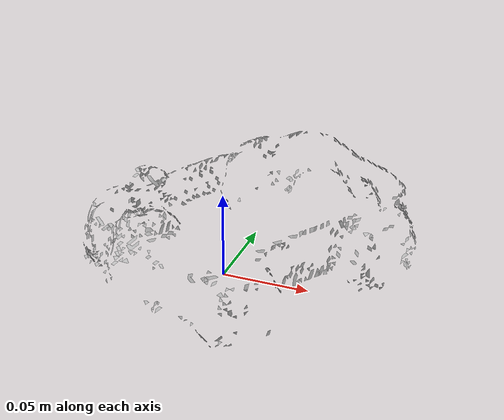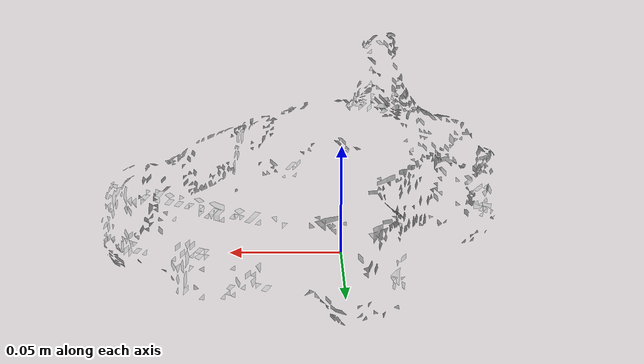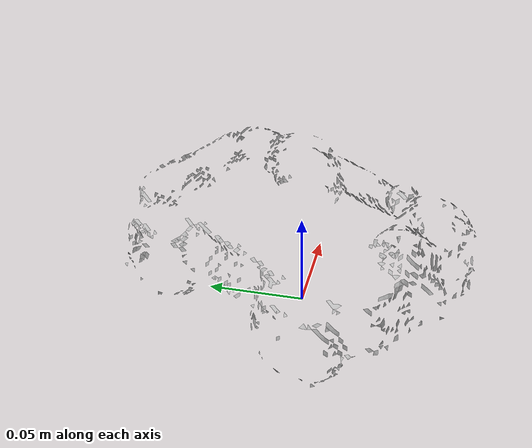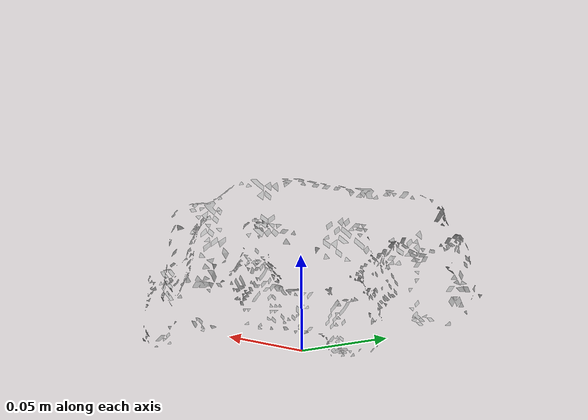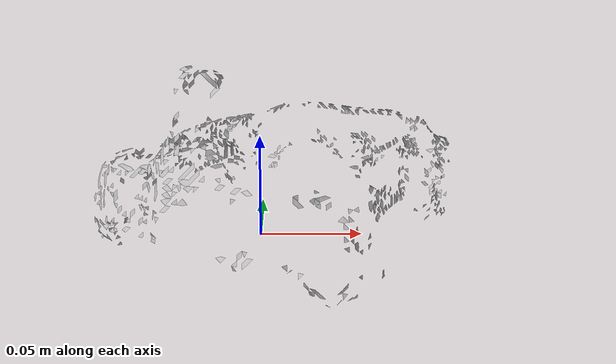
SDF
<?xml version='1.0'?>
<sdf version="1.4">
  <model name="m_lego_duplo">
    <static>false</static>
    <link name="link">
      <inertial>
        <pose>0.013570379509872303 0.002967125445406719 0.03712638948814567 3.137321300629088 -1.540255613218094 0.9815480322699593</pose>
        <mass>0.0006683685019536396</mass>
        <inertia>
          <ixx>2.1564816075912823e-06</ixx>
          <ixy>1.2609084340804852e-23</ixy>
          <ixz>-3.1363095910412123e-24</ixz>
          <iyy>1.361572899092127e-06</iyy>
          <iyz>-5.478261676853659e-23</iyz>
          <izz>6.662465749884098e-07</izz>
        </inertia>
      </inertial>
      <collision name="collision">
        <geometry>
          <mesh>
            <!-- Use a downsampled mesh for collisions -->
            <uri>model://073-m_lego_duplo/tsdf/textured.obj</uri>
	        </mesh>
        </geometry>
        <surface>
      </surface>
      </collision>
      <visual name="visual">
        <geometry>
          <mesh>
            <uri>model://073-m_lego_duplo/tsdf/textured.obj</uri>
	        </mesh>
        </geometry>
        <material>
          <script>
            <uri>model://073-m_lego_duplo/m_lego_duplo.material</uri>
            <name>m_lego_duplo</name>
          </script>
        </material>
      </visual>
    </link>
  </model>
</sdf>
